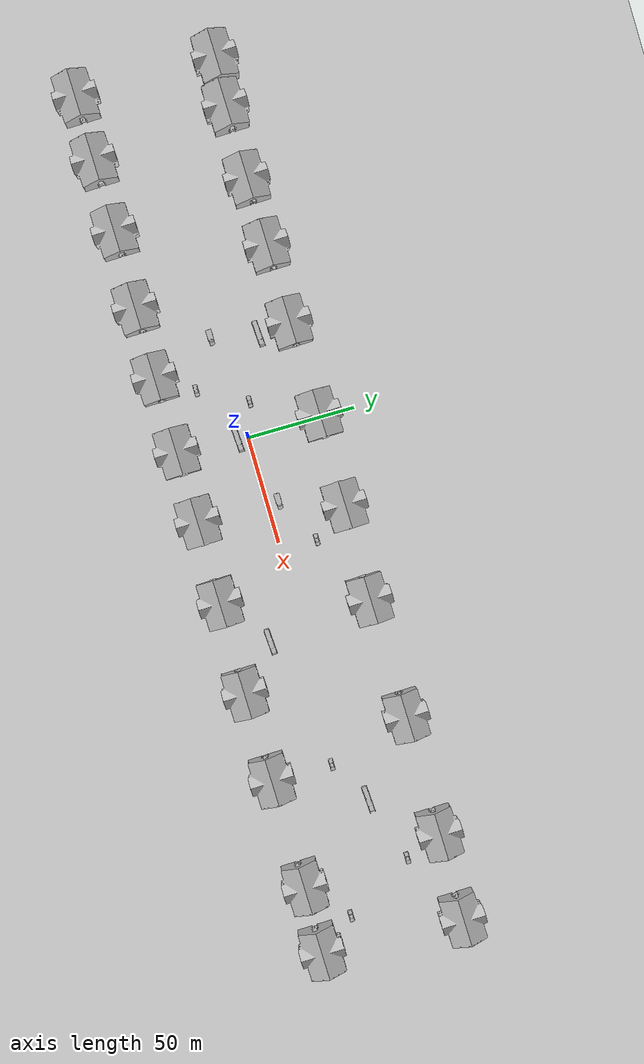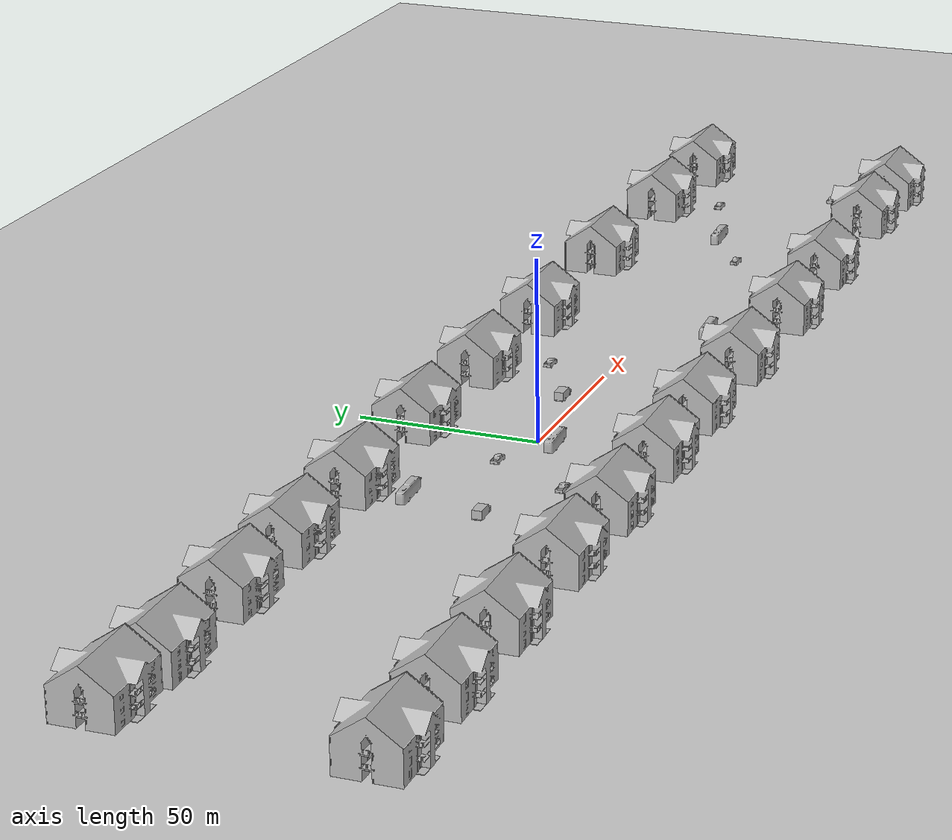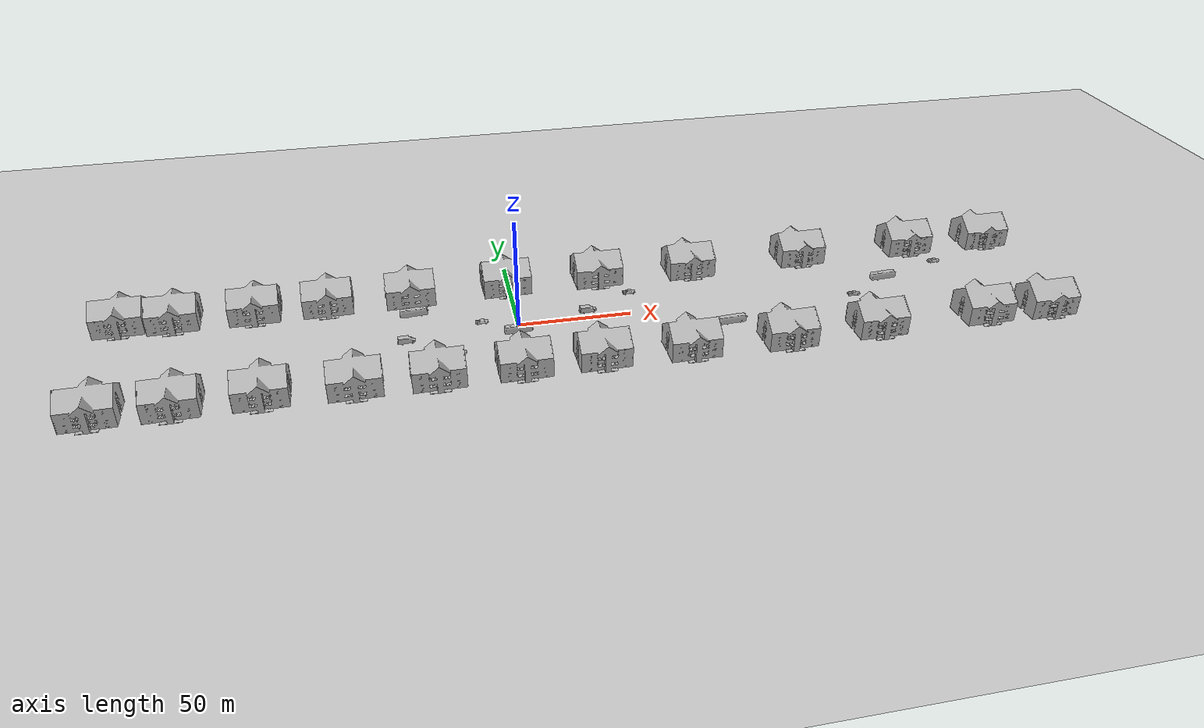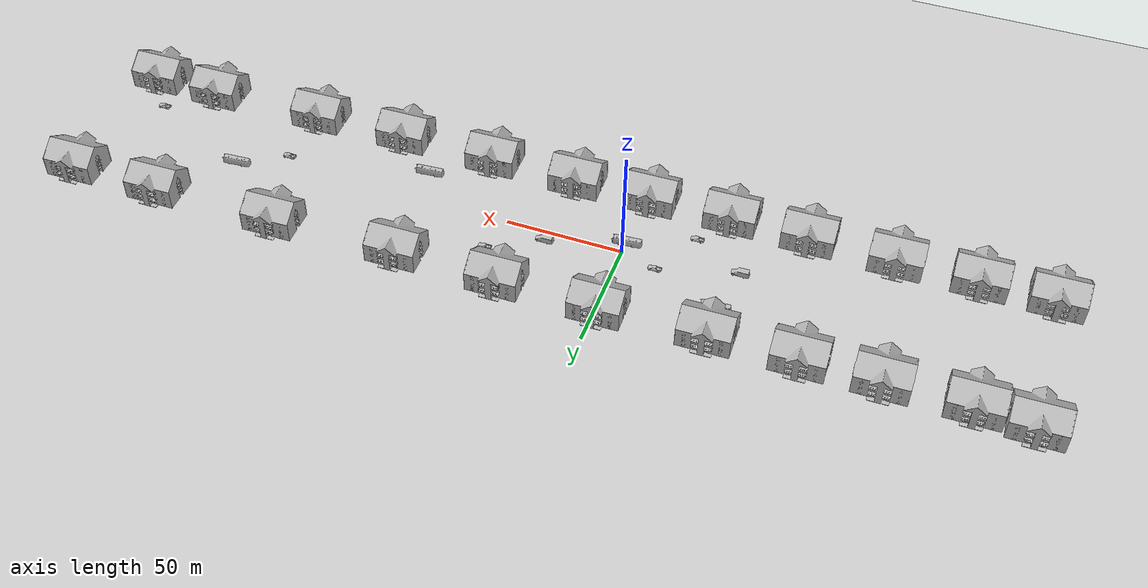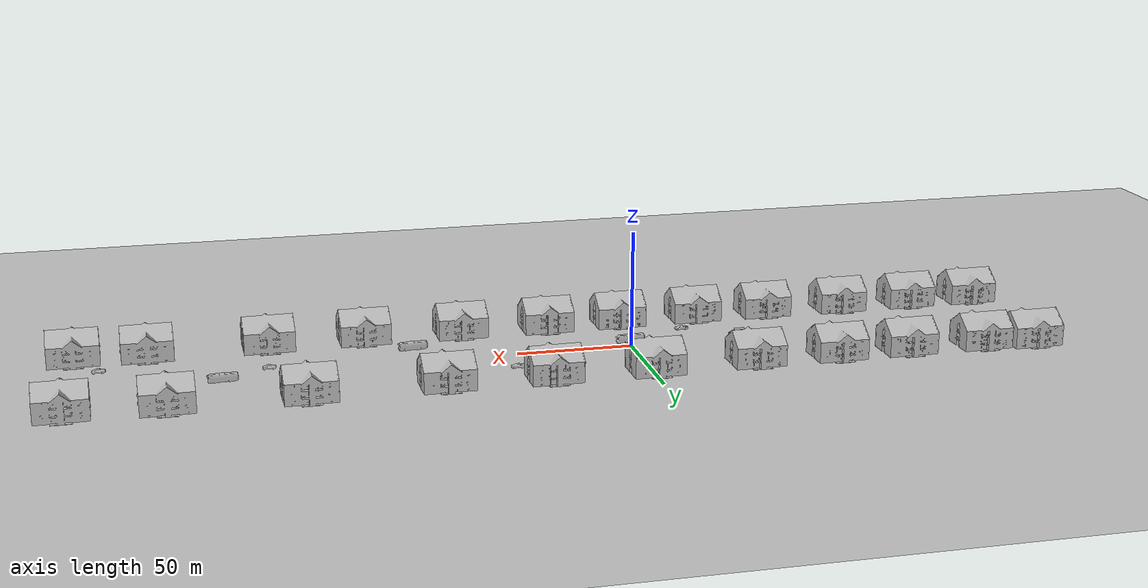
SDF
<sdf version="1.6">
 <world name="default">
  <physics name="default_physics" default="0" type="ode">
   <ode>
    <solver>
     <type>quick</type>
     <iters>100</iters>
     <sor>1</sor>
     <use_dynamic_moi_rescaling>0</use_dynamic_moi_rescaling>
    </solver>
    <constraints>
     <cfm>0</cfm>
     <erp>0.2</erp>
     <contact_max_correcting_vel>0.1</contact_max_correcting_vel>
     <contact_surface_layer>0</contact_surface_layer>
    </constraints>
   </ode>
   <real_time_update_rate>-1</real_time_update_rate>
   <max_step_size>0.001</max_step_size>
   <real_time_factor>1</real_time_factor>
  </physics>
  <gravity>0 0 -9.8</gravity>
  <light name="sun" type="directional">
   <pose>0 0 10 0 -0 0</pose>
   <diffuse>0.8 0.8 0.8 1</diffuse>
   <specular>0.2 0.2 0.2 1</specular>
   <attenuation>
    <range>1000</range>
    <constant>0.9</constant>
    <linear>0.01</linear>
    <quadratic>0.001</quadratic>
   </attenuation>
   <direction>-0.5 0.1 -0.9</direction>
  </light>
  <model name="ground_plane">
   <static>1</static>
   <link name="link">
    <collision name="collision">
     <geometry><plane><normal>0 0 1</normal><size>5000 5000</size></plane></geometry>
     <surface><friction><ode><mu>100</mu><mu2>50</mu2></ode></friction></surface>
    </collision>
    <visual name="runway">
     <pose>0 0 0.005 0 -0 0</pose>
     <cast_shadows>0</cast_shadows>
     <geometry><plane><normal>0 0 1</normal><size>1829 45</size></plane></geometry>
     <material>
      <script><uri>file://media/materials/scripts/gazebo.material</uri><name>Gazebo/Runway</name></script>
     </material>
    </visual>
    <visual name="grass">
     <pose>0 0 -0.1 0 -0 0</pose>
     <cast_shadows>0</cast_shadows>
     <geometry><plane><normal>0 0 1</normal><size>5000 5000</size></plane></geometry>
     <material>
      <script><uri>file://media/materials/scripts/gazebo.material</uri><name>Gazebo/Grass</name></script>
     </material>
    </visual>
   </link>
  </model>
  <magnetic_field>6e-06 2.3e-05 -4.2e-05</magnetic_field>
  <atmosphere type="adiabatic"/>
  <scene><ambient>0.4 0.4 0.4 1</ambient><background>0.7 0.7 0.7 1</background><shadows>1</shadows></scene>
  <spherical_coordinates>
   <surface_model>EARTH_WGS84</surface_model>
   <latitude_deg>0</latitude_deg>
   <longitude_deg>0</longitude_deg>
   <elevation>0</elevation>
   <heading_deg>0</heading_deg>
  </spherical_coordinates>
  <model name="apartment">
   <static>1</static>
   <link name="link">
    <collision name="collision">
     <geometry><mesh><uri>model://apartment/meshes/apartment.dae</uri></mesh></geometry>
    </collision>
    <visual name="visual">
     <geometry><mesh><uri>model://apartment/meshes/apartment.dae</uri></mesh></geometry>
    </visual>
   </link>
   <pose>-1.15981 33.3888 0 0 -0 1.58964</pose>
  </model>
  <model name="apartment_clone">
   <static>1</static>
   <link name="link">
    <collision name="collision">
     <geometry><mesh><uri>model://apartment/meshes/apartment.dae</uri></mesh></geometry>
    </collision>
    <visual name="visual">
     <geometry><mesh><uri>model://apartment/meshes/apartment.dae</uri></mesh></geometry>
    </visual>
   </link>
   <pose>-44.8093 31.9454 0 0 -0 1.58964</pose>
  </model>
  <model name="apartment_clone_0">
   <static>1</static>
   <link name="link">
    <collision name="collision">
     <geometry><mesh><uri>model://apartment/meshes/apartment.dae</uri></mesh></geometry>
    </collision>
    <visual name="visual">
     <geometry><mesh><uri>model://apartment/meshes/apartment.dae</uri></mesh></geometry>
    </visual>
   </link>
   <pose>-81.0506 31.7164 0 0 -0 1.58964</pose>
  </model>
  <model name="apartment_clone_1">
   <static>1</static>
   <link name="link">
    <collision name="collision">
     <geometry><mesh><uri>model://apartment/meshes/apartment.dae</uri></mesh></geometry>
    </collision>
    <visual name="visual">
     <geometry><mesh><uri>model://apartment/meshes/apartment.dae</uri></mesh></geometry>
    </visual>
   </link>
   <pose>-112.444 31.39 0 0 -0 1.58964</pose>
  </model>
  <model name="apartment_clone_2">
   <static>1</static>
   <link name="link">
    <collision name="collision">
     <geometry><mesh><uri>model://apartment/meshes/apartment.dae</uri></mesh></geometry>
    </collision>
    <visual name="visual">
     <geometry><mesh><uri>model://apartment/meshes/apartment.dae</uri></mesh></geometry>
    </visual>
   </link>
   <pose>-146.55 31.3322 0 0 -0 1.58964</pose>
  </model>
  <model name="apartment_clone_3">
   <static>1</static>
   <link name="link">
    <collision name="collision">
     <geometry><mesh><uri>model://apartment/meshes/apartment.dae</uri></mesh></geometry>
    </collision>
    <visual name="visual">
     <geometry><mesh><uri>model://apartment/meshes/apartment.dae</uri></mesh></geometry>
    </visual>
   </link>
   <pose>-169.075 32.8551 0 0 -0 1.58964</pose>
  </model>
  <model name="apartment_clone_4">
   <static>1</static>
   <link name="link">
    <collision name="collision">
     <geometry><mesh><uri>model://apartment/meshes/apartment.dae</uri></mesh></geometry>
    </collision>
    <visual name="visual">
     <geometry><mesh><uri>model://apartment/meshes/apartment.dae</uri></mesh></geometry>
    </visual>
   </link>
   <pose>41.4729 33.1126 0 0 -0 1.58964</pose>
  </model>
  <model name="apartment_clone_5">
   <static>1</static>
   <link name="link">
    <collision name="collision">
     <geometry><mesh><uri>model://apartment/meshes/apartment.dae</uri></mesh></geometry>
    </collision>
    <visual name="visual">
     <geometry><mesh><uri>model://apartment/meshes/apartment.dae</uri></mesh></geometry>
    </visual>
   </link>
   <pose>85.494 32.3134 0 0 -0 1.58964</pose>
  </model>
  <model name="apartment_clone_6">
   <static>1</static>
   <link name="link">
    <collision name="collision">
     <geometry><mesh><uri>model://apartment/meshes/apartment.dae</uri></mesh></geometry>
    </collision>
    <visual name="visual">
     <geometry><mesh><uri>model://apartment/meshes/apartment.dae</uri></mesh></geometry>
    </visual>
   </link>
   <pose>140.591 33.5253 0 0 -0 1.58964</pose>
  </model>
  <model name="apartment_clone_7">
   <static>1</static>
   <link name="link">
    <collision name="collision">
     <geometry><mesh><uri>model://apartment/meshes/apartment.dae</uri></mesh></geometry>
    </collision>
    <visual name="visual">
     <geometry><mesh><uri>model://apartment/meshes/apartment.dae</uri></mesh></geometry>
    </visual>
   </link>
   <pose>195.736 33.3581 0 0 -0 1.58964</pose>
  </model>
  <model name="apartment_clone_8">
   <static>1</static>
   <link name="link">
    <collision name="collision">
     <geometry><mesh><uri>model://apartment/meshes/apartment.dae</uri></mesh></geometry>
    </collision>
    <visual name="visual">
     <geometry><mesh><uri>model://apartment/meshes/apartment.dae</uri></mesh></geometry>
    </visual>
   </link>
   <pose>235.534 32.7405 0 0 -0 1.58964</pose>
  </model>
  <model name="apartment_clone_9">
   <static>1</static>
   <link name="link">
    <collision name="collision">
     <geometry><mesh><uri>model://apartment/meshes/apartment.dae</uri></mesh></geometry>
    </collision>
    <visual name="visual">
     <geometry><mesh><uri>model://apartment/meshes/apartment.dae</uri></mesh></geometry>
    </visual>
   </link>
   <pose>-2.43442 -32.9429 0 0 -0 1.58964</pose>
  </model>
  <model name="apartment_clone_10">
   <static>1</static>
   <link name="link">
    <collision name="collision">
     <geometry><mesh><uri>model://apartment/meshes/apartment.dae</uri></mesh></geometry>
    </collision>
    <visual name="visual">
     <geometry><mesh><uri>model://apartment/meshes/apartment.dae</uri></mesh></geometry>
    </visual>
   </link>
   <pose>-37.2259 -33.1997 0 0 -0 1.58964</pose>
  </model>
  <model name="apartment_clone_11">
   <static>1</static>
   <link name="link">
    <collision name="collision">
     <geometry><mesh><uri>model://apartment/meshes/apartment.dae</uri></mesh></geometry>
    </collision>
    <visual name="visual">
     <geometry><mesh><uri>model://apartment/meshes/apartment.dae</uri></mesh></geometry>
    </visual>
   </link>
   <pose>-69.9753 -32.8938 0 0 -0 1.58964</pose>
  </model>
  <model name="apartment_clone_12">
   <static>1</static>
   <link name="link">
    <collision name="collision">
     <geometry><mesh><uri>model://apartment/meshes/apartment.dae</uri></mesh></geometry>
    </collision>
    <visual name="visual">
     <geometry><mesh><uri>model://apartment/meshes/apartment.dae</uri></mesh></geometry>
    </visual>
   </link>
   <pose>-105.828 -32.3284 0 0 -0 1.58964</pose>
  </model>
  <model name="apartment_clone_13">
   <static>1</static>
   <link name="link">
    <collision name="collision">
     <geometry><mesh><uri>model://apartment/meshes/apartment.dae</uri></mesh></geometry>
    </collision>
    <visual name="visual">
     <geometry><mesh><uri>model://apartment/meshes/apartment.dae</uri></mesh></geometry>
    </visual>
   </link>
   <pose>-139.112 -32.4205 0 0 -0 1.58964</pose>
  </model>
  <model name="apartment_clone_14">
   <static>1</static>
   <link name="link">
    <collision name="collision">
     <geometry><mesh><uri>model://apartment/meshes/apartment.dae</uri></mesh></geometry>
    </collision>
    <visual name="visual">
     <geometry><mesh><uri>model://apartment/meshes/apartment.dae</uri></mesh></geometry>
    </visual>
   </link>
   <pose>-169.075 -32.3782 0 0 -0 1.58964</pose>
  </model>
  <model name="apartment_clone_15">
   <static>1</static>
   <link name="link">
    <collision name="collision">
     <geometry><mesh><uri>model://apartment/meshes/apartment.dae</uri></mesh></geometry>
    </collision>
    <visual name="visual">
     <geometry><mesh><uri>model://apartment/meshes/apartment.dae</uri></mesh></geometry>
    </visual>
   </link>
   <pose>30.4749 -32.3997 0 0 -0 1.58964</pose>
  </model>
  <model name="apartment_clone_16">
   <static>1</static>
   <link name="link">
    <collision name="collision">
     <geometry><mesh><uri>model://apartment/meshes/apartment.dae</uri></mesh></geometry>
    </collision>
    <visual name="visual">
     <geometry><mesh><uri>model://apartment/meshes/apartment.dae</uri></mesh></geometry>
    </visual>
   </link>
   <pose>68.5177 -32.9134 0 0 -0 1.58964</pose>
  </model>
  <model name="apartment_clone_17">
   <static>1</static>
   <link name="link">
    <collision name="collision">
     <geometry><mesh><uri>model://apartment/meshes/apartment.dae</uri></mesh></geometry>
    </collision>
    <visual name="visual">
     <geometry><mesh><uri>model://apartment/meshes/apartment.dae</uri></mesh></geometry>
    </visual>
   </link>
   <pose>110.745 -33.4593 0 0 -0 1.58964</pose>
  </model>
  <model name="apartment_clone_18">
   <static>1</static>
   <link name="link">
    <collision name="collision">
     <geometry><mesh><uri>model://apartment/meshes/apartment.dae</uri></mesh></geometry>
    </collision>
    <visual name="visual">
     <geometry><mesh><uri>model://apartment/meshes/apartment.dae</uri></mesh></geometry>
    </visual>
   </link>
   <pose>151.737 -32.6006 0 0 -0 1.58964</pose>
  </model>
  <model name="apartment_clone_19">
   <static>1</static>
   <link name="link">
    <collision name="collision">
     <geometry><mesh><uri>model://apartment/meshes/apartment.dae</uri></mesh></geometry>
    </collision>
    <visual name="visual">
     <geometry><mesh><uri>model://apartment/meshes/apartment.dae</uri></mesh></geometry>
    </visual>
   </link>
   <pose>202.258 -31.6387 0 0 -0 1.58964</pose>
  </model>
  <model name="apartment_clone_20">
   <static>1</static>
   <link name="link">
    <collision name="collision">
     <geometry><mesh><uri>model://apartment/meshes/apartment.dae</uri></mesh></geometry>
    </collision>
    <visual name="visual">
     <geometry><mesh><uri>model://apartment/meshes/apartment.dae</uri></mesh></geometry>
    </visual>
   </link>
   <pose>232.39 -32.2505 0 0 -0 1.58964</pose>
  </model>
  <model name="ambulance_clone">
   <static>1</static>
   <link name="link">
    <collision name="collision">
     <geometry>
      <mesh><scale>0.0254 0.0254 0.0254</scale><uri>model://ambulance/meshes/ambulance.obj</uri></mesh>
     </geometry>
    </collision>
    <visual name="visual">
     <geometry>
      <mesh><scale>0.0254 0.0254 0.0254</scale><uri>model://ambulance/meshes/ambulance.obj</uri></mesh>
     </geometry>
    </visual>
   </link>
   <pose>31.529 5.05831 0 0 -0 1.59686</pose>
  </model>
  <model name="ambulance_clone_clone">
   <static>1</static>
   <link name="link">
    <collision name="collision">
     <geometry>
      <mesh><scale>0.0254 0.0254 0.0254</scale><uri>model://ambulance/meshes/ambulance.obj</uri></mesh>
     </geometry>
    </collision>
    <visual name="visual">
     <geometry>
      <mesh><scale>0.0254 0.0254 0.0254</scale><uri>model://ambulance/meshes/ambulance.obj</uri></mesh>
     </geometry>
    </visual>
   </link>
   <pose>-48.6653 -4.12894 0 0 -0 1.59686</pose>
  </model>
  <model name="bus">
   <static>1</static>
   <link name="link">
    <collision name="collision">
     <geometry><mesh><scale>0.01 0.01 0.01</scale><uri>model://bus/meshes/bus.obj</uri></mesh></geometry>
    </collision>
    <visual name="visual">
     <geometry><mesh><scale>0.01 0.01 0.01</scale><uri>model://bus/meshes/bus.obj</uri></mesh></geometry>
    </visual>
   </link>
   <pose>-44.0621 17.3006 0 0 -0 1.63411</pose>
  </model>
  <model name="bus_clone">
   <static>1</static>
   <link name="link">
    <collision name="collision">
     <geometry><mesh><scale>0.01 0.01 0.01</scale><uri>model://bus/meshes/bus.obj</uri></mesh></geometry>
    </collision>
    <visual name="visual">
     <geometry><mesh><scale>0.01 0.01 0.01</scale><uri>model://bus/meshes/bus.obj</uri></mesh></geometry>
    </visual>
   </link>
   <pose>-0.633677 -4.97766 0 0 -0 1.63411</pose>
  </model>
  <model name="bus_clone_0">
   <static>1</static>
   <link name="link">
    <collision name="collision">
     <geometry><mesh><scale>0.01 0.01 0.01</scale><uri>model://bus/meshes/bus.obj</uri></mesh></geometry>
    </collision>
    <visual name="visual">
     <geometry><mesh><scale>0.01 0.01 0.01</scale><uri>model://bus/meshes/bus.obj</uri></mesh></geometry>
    </visual>
   </link>
   <pose>92.0821 -16.1165 0 0 -0 1.63411</pose>
  </model>
  <model name="bus_clone_1">
   <static>1</static>
   <link name="link">
    <collision name="collision">
     <geometry><mesh><scale>0.01 0.01 0.01</scale><uri>model://bus/meshes/bus.obj</uri></mesh></geometry>
    </collision>
    <visual name="visual">
     <geometry><mesh><scale>0.01 0.01 0.01</scale><uri>model://bus/meshes/bus.obj</uri></mesh></geometry>
    </visual>
   </link>
   <pose>173.017 6.80115 0 0 -0 1.63411</pose>
  </model>
  <model name="pickup">
   <static>1</static>
   <link name="link">
    <collision name="collision">
     <pose>0 0 0 0 0 -1.5708</pose>
     <geometry><mesh><uri>model://pickup/meshes/pickup.dae</uri></mesh></geometry>
    </collision>
    <visual name="visual">
     <pose>0 0 0 0 0 -1.5708</pose>
     <geometry><mesh><uri>model://pickup/meshes/pickup.dae</uri></mesh></geometry>
    </visual>
   </link>
   <pose>53.3676 16.9204 0 0 -0 0</pose>
  </model>
  <model name="pickup_clone">
   <static>1</static>
   <link name="link">
    <collision name="collision">
     <pose>0 0 0 0 0 -1.5708</pose>
     <geometry><mesh><uri>model://pickup/meshes/pickup.dae</uri></mesh></geometry>
    </collision>
    <visual name="visual">
     <pose>0 0 0 0 0 -1.5708</pose>
     <geometry><mesh><uri>model://pickup/meshes/pickup.dae</uri></mesh></geometry>
    </visual>
   </link>
   <pose>-15.4148 4.95283 0 0 -0 0</pose>
  </model>
  <model name="pickup_clone_0">
   <static>1</static>
   <link name="link">
    <collision name="collision">
     <pose>0 0 0 0 0 -1.5708</pose>
     <geometry><mesh><uri>model://pickup/meshes/pickup.dae</uri></mesh></geometry>
    </collision>
    <visual name="visual">
     <pose>0 0 0 0 0 -1.5708</pose>
     <geometry><mesh><uri>model://pickup/meshes/pickup.dae</uri></mesh></geometry>
    </visual>
   </link>
   <pose>-26.9429 -17.0247 0 0 -0 0</pose>
  </model>
  <model name="pickup_clone_1">
   <static>1</static>
   <link name="link">
    <collision name="collision">
     <pose>0 0 0 0 0 -1.5708</pose>
     <geometry><mesh><uri>model://pickup/meshes/pickup.dae</uri></mesh></geometry>
    </collision>
    <visual name="visual">
     <pose>0 0 0 0 0 -1.5708</pose>
     <geometry><mesh><uri>model://pickup/meshes/pickup.dae</uri></mesh></geometry>
    </visual>
   </link>
   <pose>153.61 -4.832 0 0 -0 0</pose>
  </model>
  <model name="pickup_clone_2">
   <static>1</static>
   <link name="link">
    <collision name="collision">
     <pose>0 0 0 0 0 -1.5708</pose>
     <geometry><mesh><uri>model://pickup/meshes/pickup.dae</uri></mesh></geometry>
    </collision>
    <visual name="visual">
     <pose>0 0 0 0 0 -1.5708</pose>
     <geometry><mesh><uri>model://pickup/meshes/pickup.dae</uri></mesh></geometry>
    </visual>
   </link>
   <pose>222.201 -15.3922 0 0 -0 0</pose>
  </model>
  <model name="pickup_clone_3">
   <static>1</static>
   <link name="link">
    <collision name="collision">
     <pose>0 0 0 0 0 -1.5708</pose>
     <geometry><mesh><uri>model://pickup/meshes/pickup.dae</uri></mesh></geometry>
    </collision>
    <visual name="visual">
     <pose>0 0 0 0 0 -1.5708</pose>
     <geometry><mesh><uri>model://pickup/meshes/pickup.dae</uri></mesh></geometry>
    </visual>
   </link>
   <pose>203.914 16.4931 0 0 -0 0</pose>
  </model>
 </world>
</sdf>
